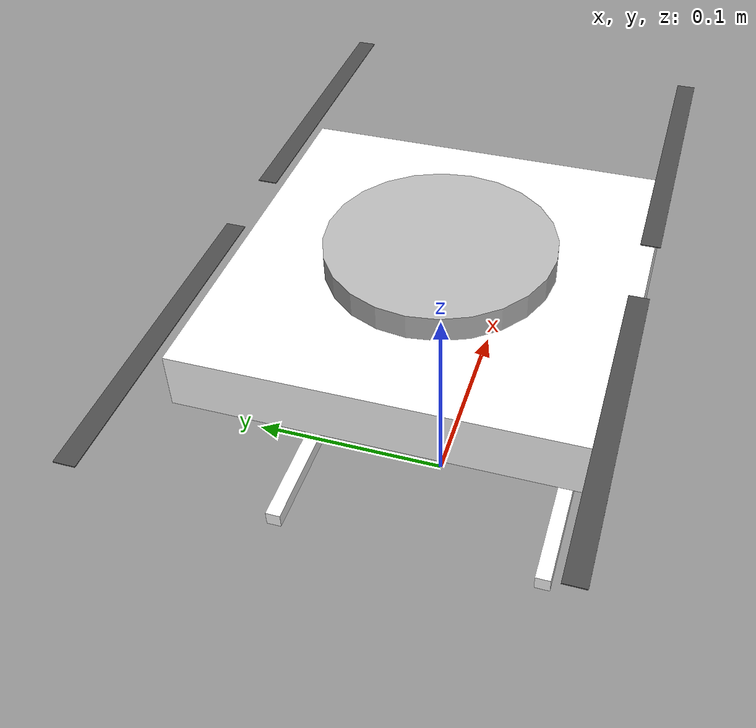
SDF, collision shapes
<?xml version="1.0" encoding="UTF-8"?>
<sdf version='1.9'>
  <model name='x500'>
    <include merge='true'>
      <uri>model://x500_base</uri>
    </include>
    <plugin filename="gz-sim-multicopter-motor-model-system" name="gz::sim::systems::MulticopterMotorModel">
      <jointName>rotor_0_joint</jointName>
      <linkName>rotor_0</linkName>
      <turningDirection>ccw</turningDirection>
      <timeConstantUp>0.0125</timeConstantUp>
      <timeConstantDown>0.025</timeConstantDown>
      <maxRotVelocity>1000.0</maxRotVelocity>
      <motorConstant>8.54858e-06</motorConstant>
      <momentConstant>0.016</momentConstant>
      <commandSubTopic>command/motor_speed</commandSubTopic>
      <motorNumber>0</motorNumber>
      <rotorDragCoefficient>8.06428e-05</rotorDragCoefficient>
      <rollingMomentCoefficient>1e-06</rollingMomentCoefficient>
      <rotorVelocitySlowdownSim>10</rotorVelocitySlowdownSim>
      <motorType>velocity</motorType>
    </plugin>
    <plugin filename="gz-sim-multicopter-motor-model-system" name="gz::sim::systems::MulticopterMotorModel">
      <jointName>rotor_1_joint</jointName>
      <linkName>rotor_1</linkName>
      <turningDirection>ccw</turningDirection>
      <timeConstantUp>0.0125</timeConstantUp>
      <timeConstantDown>0.025</timeConstantDown>
      <maxRotVelocity>1000.0</maxRotVelocity>
      <motorConstant>8.54858e-06</motorConstant>
      <momentConstant>0.016</momentConstant>
      <commandSubTopic>command/motor_speed</commandSubTopic>
      <motorNumber>1</motorNumber>
      <rotorDragCoefficient>8.06428e-05</rotorDragCoefficient>
      <rollingMomentCoefficient>1e-06</rollingMomentCoefficient>
      <rotorVelocitySlowdownSim>10</rotorVelocitySlowdownSim>
      <motorType>velocity</motorType>
    </plugin>
    <plugin filename="gz-sim-multicopter-motor-model-system" name="gz::sim::systems::MulticopterMotorModel">
      <jointName>rotor_2_joint</jointName>
      <linkName>rotor_2</linkName>
      <turningDirection>cw</turningDirection>
      <timeConstantUp>0.0125</timeConstantUp>
      <timeConstantDown>0.025</timeConstantDown>
      <maxRotVelocity>1000.0</maxRotVelocity>
      <motorConstant>8.54858e-06</motorConstant>
      <momentConstant>0.016</momentConstant>
      <commandSubTopic>command/motor_speed</commandSubTopic>
      <motorNumber>2</motorNumber>
      <rotorDragCoefficient>8.06428e-05</rotorDragCoefficient>
      <rollingMomentCoefficient>1e-06</rollingMomentCoefficient>
      <rotorVelocitySlowdownSim>10</rotorVelocitySlowdownSim>
      <motorType>velocity</motorType>
    </plugin>
    <plugin filename="gz-sim-multicopter-motor-model-system" name="gz::sim::systems::MulticopterMotorModel">
      <jointName>rotor_3_joint</jointName>
      <linkName>rotor_3</linkName>
      <turningDirection>cw</turningDirection>
      <timeConstantUp>0.0125</timeConstantUp>
      <timeConstantDown>0.025</timeConstantDown>
      <maxRotVelocity>1000.0</maxRotVelocity>
      <motorConstant>8.54858e-06</motorConstant>
      <momentConstant>0.016</momentConstant>
      <commandSubTopic>command/motor_speed</commandSubTopic>
      <motorNumber>3</motorNumber>
      <rotorDragCoefficient>8.06428e-05</rotorDragCoefficient>
      <rollingMomentCoefficient>1e-06</rollingMomentCoefficient>
      <rotorVelocitySlowdownSim>10</rotorVelocitySlowdownSim>
      <motorType>velocity</motorType>
    </plugin>

    <joint name="lidar_joint" type="fixed">
      <parent>base_link</parent>
      <child>lidar_link</child>
      <pose relative_to="base_link">0.0 0.0 0.12 0 0 0</pose>
    </joint>

    <link name='lidar_link'>
      <pose relative_to="lidar_joint"/>
      <inertial>
        <mass>0.001</mass>
        <inertia>
          <ixx>1e-6</ixx>
          <ixy>0.0</ixy>
          <ixz>0.0</ixz>
          <iyy>1e-6</iyy>
          <iyz>0.0</iyz>
          <izz>1e-6</izz>
        </inertia>
      </inertial>
      <gravity>false</gravity>
      <self_collide>false</self_collide>

      <visual name="lidar_link_visual">
        <geometry>
          <cylinder>
            <radius>0.0508</radius>
            <length>0.055</length>
          </cylinder>
        </geometry>
      </visual>

      <collision name="lidar_link_collision">
        <geometry>
          <cylinder>
            <radius>0.0508</radius>
            <length>0.055</length>
          </cylinder>
        </geometry>
      </collision>

      <sensor name="lidar_gpu_sensor" type="gpu_lidar">
        <always_on>true</always_on>
        <visualize>true</visualize>
        <update_rate>10</update_rate>
        <topic>scan</topic>
        <gz_frame_id>lidar_link</gz_frame_id>
        <lidar>
          <scan>
            <horizontal>
              <samples>100</samples>
              <resolution>1.000000</resolution>
              <min_angle>0.000000</min_angle>
              <max_angle>6.280000</max_angle>
            </horizontal>
          </scan>
          <range>
            <min>0.120000</min>
            <max>10</max>
            <resolution>0.015000</resolution>
          </range>
          <noise>
            <type>gaussian</type>
            <mean>0.0</mean>
            <stddev>0.01</stddev>
          </noise>
        </lidar>
      </sensor>
    </link>

  </model>
</sdf>

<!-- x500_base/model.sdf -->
<sdf version='1.9'>
  <model name='x500_base'>
    <pose>0 0 0.12 0 0 0</pose>
    <self_collide>false</self_collide>
    <static>false</static>
    <link name="base_link">
      <inertial>
        <mass>1.0</mass>
        <inertia>
          <ixx>0.005416666666666667</ixx>
          <ixy>0</ixy>
          <ixz>0</ixz>
          <iyy>0.005416666666666667</iyy>
          <iyz>0</iyz>
          <izz>0.010000000000000002</izz>
        </inertia>
      </inertial>
      <gravity>true</gravity>
      <velocity_decay/>
      <visual name="base_link_visual">
        <pose>0 0 0.0125 0 0 3.141592654</pose>
        <geometry>
          <mesh>
            <scale>0.5 0.5 0.5</scale>
            <uri>model://x500_base/meshes/NXP-HGD-CF.dae</uri>
          </mesh>
        </geometry>
      </visual>
      <visual name="5010_motor_base_0">
        <pose>0.087 0.087 0.016 0 0 -0.45</pose>
        <geometry>
          <mesh>
            <scale>0.5 0.5 0.5</scale>
            <uri>model://x500_base/meshes/5010Base.dae</uri>
          </mesh>
        </geometry>
      </visual>
      <visual name="5010_motor_base_1">
        <pose>-0.087 0.087 0.016 0 0 -0.45</pose>
        <geometry>
          <mesh>
            <scale>0.5 0.5 0.5</scale>
            <uri>model://x500_base/meshes/5010Base.dae</uri>
          </mesh>
        </geometry>
      </visual>
      <visual name="5010_motor_base_2">
        <pose>0.087 -0.087 0.016 0 0 -0.45</pose>
        <geometry>
          <mesh>
            <scale>0.5 0.5 0.5</scale>
            <uri>model://x500_base/meshes/5010Base.dae</uri>
          </mesh>
        </geometry>
      </visual>
      <visual name="5010_motor_base_3">
        <pose>-0.087 -0.087 0.016 0 0 -0.45</pose>
        <geometry>
          <mesh>
            <scale>0.5 0.5 0.5</scale>
            <uri>model://x500_base/meshes/5010Base.dae</uri>
          </mesh>
        </geometry>
      </visual>
      <visual name="NXP_FMUK66_FRONT">
        <pose>0.0235 0.0005 0.0215 1 0 1.57</pose>
        <cast_shadows>false</cast_shadows>
        <geometry>
          <plane>
            <normal>0 0 1</normal>
            <size>0.0065 0.0035</size>
          </plane>
        </geometry>
        <material>
          <diffuse>1.0 1.0 1.0</diffuse>
          <specular>1.0 1.0 1.0</specular>
          <pbr>
            <metal>
              <albedo_map>model://x500_base/materials/textures/nxp.png</albedo_map>
            </metal>
          </pbr>
        </material>
      </visual>
      <visual name="NXP_FMUK66_TOP">
        <pose>-0.0115 0 0.02575 0 0 -1.57</pose>
        <cast_shadows>false</cast_shadows>
        <geometry>
          <plane>
            <normal>0 0 1</normal>
            <size>0.0065 0.0035</size>
          </plane>
        </geometry>
        <material>
          <diffuse>1.0 1.0 1.0</diffuse>
          <specular>1.0 1.0 1.0</specular>
          <pbr>
            <metal>
              <albedo_map>model://x500_base/materials/textures/nxp.png</albedo_map>
            </metal>
          </pbr>
        </material>
      </visual>
      <visual name="RDDRONE_FMUK66_TOP">
        <pose>-0.015 0 0.02575 0 0 -1.57</pose>
        <cast_shadows>false</cast_shadows>
        <geometry>
          <plane>
            <normal>0 0 1</normal>
            <size>0.016 0.0017</size>
          </plane>
        </geometry>
        <material>
          <diffuse>1.0 1.0 1.0</diffuse>
          <specular>1.0 1.0 1.0</specular>
          <pbr>
            <metal>
              <albedo_map>model://x500_base/materials/textures/rd.png</albedo_map>
            </metal>
          </pbr>
        </material>
      </visual>
      <collision name="base_link_collision_0">
        <pose>0 0 0.0035 0 0 0</pose>
        <geometry>
          <box>
            <size>0.17677669529663686 0.17677669529663686 0.025</size>
          </box>
        </geometry>
        <surface>
          <contact>
            <ode>
              <min_depth>0.001</min_depth>
              <max_vel>0</max_vel>
            </ode>
          </contact>
          <friction>
            <ode/>
          </friction>
        </surface>
      </collision>
      <collision name="base_link_collision_1">
        <pose>0 -0.049 -0.0615 -0.35 0 0</pose>
        <geometry>
          <box>
            <size>0.0075 0.0075 0.105</size>
          </box>
        </geometry>
        <surface>
          <contact>
            <ode>
              <min_depth>0.001</min_depth>
              <max_vel>0</max_vel>
            </ode>
          </contact>
          <friction>
            <ode/>
          </friction>
        </surface>
      </collision>
      <collision name="base_link_collision_2">
        <pose>0 0.049 -0.0615 0.35 0 0</pose>
        <geometry>
          <box>
            <size>0.0075 0.0075 0.105</size>
          </box>
        </geometry>
        <surface>
          <contact>
            <ode>
              <min_depth>0.001</min_depth>
              <max_vel>0</max_vel>
            </ode>
          </contact>
          <friction>
            <ode/>
          </friction>
        </surface>
      </collision>
      <collision name="base_link_collision_3">
        <pose>0 -0.066 -0.10975 0 0 0</pose>
        <geometry>
          <box>
            <size>0.125 0.0075 0.0075</size>
          </box>
        </geometry>
        <surface>
          <contact>
            <ode>
              <min_depth>0.001</min_depth>
              <max_vel>0</max_vel>
            </ode>
          </contact>
          <friction>
            <ode/>
          </friction>
        </surface>
      </collision>
      <collision name="base_link_collision_4">
        <pose>0 0.066 -0.10975 0 0 0</pose>
        <geometry>
          <box>
            <size>0.125 0.0075 0.0075</size>
          </box>
        </geometry>
        <surface>
          <contact>
            <ode>
              <min_depth>0.001</min_depth>
              <max_vel>0</max_vel>
            </ode>
          </contact>
          <friction>
            <ode/>
          </friction>
        </surface>
      </collision>
      <sensor name="air_pressure_sensor" type="air_pressure">
        <always_on>1</always_on>
        <update_rate>50</update_rate>
        <air_pressure>
          <pressure>
            <noise type="gaussian">
              <mean>0</mean>
              <stddev>0.01</stddev>
            </noise>
          </pressure>
        </air_pressure>
      </sensor>
      <sensor name="imu_sensor" type="imu">
        <always_on>1</always_on>
        <update_rate>250</update_rate>
        <imu>
          <angular_velocity>
            <x>
              <noise type="gaussian">
                <mean>0</mean>
                <stddev>0.00018665</stddev>
                <dynamic_bias_stddev>3.8785e-05</dynamic_bias_stddev>
                <dynamic_bias_correlation_time>1000</dynamic_bias_correlation_time>
              </noise>
            </x>
            <y>
              <noise type="gaussian">
                <mean>0</mean>
                <stddev>0.00018665</stddev>
                <dynamic_bias_stddev>3.8785e-05</dynamic_bias_stddev>
                <dynamic_bias_correlation_time>1000</dynamic_bias_correlation_time>
              </noise>
            </y>
            <z>
              <noise type="gaussian">
                <mean>0</mean>
                <stddev>0.00018665</stddev>
                <dynamic_bias_stddev>3.8785e-05</dynamic_bias_stddev>
                <dynamic_bias_correlation_time>1000</dynamic_bias_correlation_time>
              </noise>
            </z>
          </angular_velocity>
          <linear_acceleration>
            <x>
              <noise type="gaussian">
                <mean>0</mean>
                <stddev>0.00186</stddev>
                <dynamic_bias_stddev>0.006</dynamic_bias_stddev>
                <dynamic_bias_correlation_time>300</dynamic_bias_correlation_time>
              </noise>
            </x>
            <y>
              <noise type="gaussian">
                <mean>0</mean>
                <stddev>0.00186</stddev>
                <dynamic_bias_stddev>0.006</dynamic_bias_stddev>
                <dynamic_bias_correlation_time>300</dynamic_bias_correlation_time>
              </noise>
            </y>
            <z>
              <noise type="gaussian">
                <mean>0</mean>
                <stddev>0.00186</stddev>
                <dynamic_bias_stddev>0.006</dynamic_bias_stddev>
                <dynamic_bias_correlation_time>300</dynamic_bias_correlation_time>
              </noise>
            </z>
          </linear_acceleration>
        </imu>
      </sensor>
      <sensor name="navsat_sensor" type="navsat">
        <always_on>1</always_on>
        <update_rate>30</update_rate>
      </sensor>
    </link>
    <link name="rotor_0">
      <gravity>true</gravity>
      <self_collide>false</self_collide>
      <velocity_decay/>
      <pose>0.087 -0.087 0.03 0 0 0</pose>
      <inertial>
          <mass>0.008038461538461538</mass>
          <inertia>
            <ixx>9.616227620998331e-08</ixx>
            <iyy>6.528962922925001e-06</iyy>
            <izz>6.62464558678501e-06</izz>
          </inertia>
        </inertial>
      <visual name="rotor_0_visual">
        <pose>-0.011 -0.07319230769230769 -0.008 0 0 0</pose>
        <geometry>
          <mesh>
            <scale>0.4230769230769231 0.4230769230769231 0.4230769230769231</scale>
            <uri>model://x500_base/meshes/1345_prop_ccw.stl</uri>
          </mesh>
        </geometry>
        <material>
          <script>
            <name>Gazebo/DarkGrey</name>
            <uri>file://media/materials/scripts/gazebo.material</uri>
          </script>
        </material>
      </visual>
      <visual name="rotor_0_visual_motor_bell">
        <pose>0 0 -0.016 0 0 0</pose>
        <geometry>
          <mesh>
            <scale>0.5 0.5 0.5</scale>
            <uri>model://x500_base/meshes/5010Bell.dae</uri>
          </mesh>
        </geometry>
      </visual>
      <collision name="rotor_0_collision">
        <pose>0 0 0 0 0 0 </pose>
        <geometry>
          <box>
            <size>0.1396153846153846 0.008461538461538461 0.0004230769230769231</size>
          </box>
        </geometry>
        <surface>
          <contact>
            <ode>
              <min_depth>0.001</min_depth>
              <max_vel>0</max_vel>
            </ode>
          </contact>
          <friction>
            <ode/>
          </friction>
        </surface>
      </collision>
    </link>
    <joint name="rotor_0_joint" type="revolute">
      <parent>base_link</parent>
      <child>rotor_0</child>
      <axis>
        <xyz>0 0 1</xyz>
        <limit>
          <lower>-1e+16</lower>
          <upper>1e+16</upper>
        </limit>
        <dynamics>
          <spring_reference>0</spring_reference>
          <spring_stiffness>0</spring_stiffness>
        </dynamics>
      </axis>
    </joint>
    <link name="rotor_1">
      <gravity>true</gravity>
      <self_collide>false</self_collide>
      <velocity_decay/>
      <pose>-0.087 0.087 0.03 0 0 0</pose>
      <inertial>
          <mass>0.008038461538461538</mass>
          <inertia>
            <ixx>9.616227620998331e-08</ixx>
            <iyy>6.528962922925001e-06</iyy>
            <izz>6.62464558678501e-06</izz>
          </inertia>
        </inertial>
      <visual name="rotor_1_visual">
        <pose>-0.011 -0.07319230769230769 -0.008 0 0 0</pose>
        <geometry>
          <mesh>
            <scale>0.4230769230769231 0.4230769230769231 0.4230769230769231</scale>
            <uri>model://x500_base/meshes/1345_prop_ccw.stl</uri>
          </mesh>
        </geometry>
        <material>
          <script>
            <name>Gazebo/DarkGrey</name>
            <uri>file://media/materials/scripts/gazebo.material</uri>
          </script>
        </material>
      </visual>
      <visual name="rotor_1_visual_motor_top">
        <pose>0 0 -0.016 0 0 0</pose>
        <geometry>
          <mesh>
            <scale>0.5 0.5 0.5</scale>
            <uri>model://x500_base/meshes/5010Bell.dae</uri>
          </mesh>
        </geometry>
      </visual>
      <collision name="rotor_1_collision">
        <pose>0 0 0 0 0 0 </pose>
        <geometry>
          <box>
            <size>0.1396153846153846 0.008461538461538461 0.0004230769230769231</size>
          </box>
        </geometry>
        <surface>
          <contact>
            <ode>
              <min_depth>0.001</min_depth>
              <max_vel>0</max_vel>
            </ode>
          </contact>
          <friction>
            <ode/>
          </friction>
        </surface>
      </collision>
    </link>
    <joint name="rotor_1_joint" type="revolute">
      <parent>base_link</parent>
      <child>rotor_1</child>
      <axis>
        <xyz>0 0 1</xyz>
        <limit>
          <lower>-1e+16</lower>
          <upper>1e+16</upper>
        </limit>
        <dynamics>
          <spring_reference>0</spring_reference>
          <spring_stiffness>0</spring_stiffness>
        </dynamics>
      </axis>
    </joint>
    <link name="rotor_2">
      <gravity>true</gravity>
      <self_collide>false</self_collide>
      <velocity_decay/>
      <pose>0.087 0.087 0.03 0 0 0</pose>
      <inertial>
          <mass>0.008038461538461538</mass>
          <inertia>
            <ixx>9.616227620998331e-08</ixx>
            <iyy>6.528962922925001e-06</iyy>
            <izz>6.62464558678501e-06</izz>
          </inertia>
        </inertial>
      <visual name="rotor_2_visual">
        <pose>-0.011 -0.07319230769230769 -0.008 0 0 0</pose>
        <geometry>
          <mesh>
            <scale>0.4230769230769231 0.4230769230769231 0.4230769230769231</scale>
            <uri>model://x500_base/meshes/1345_prop_cw.stl</uri>
          </mesh>
        </geometry>
        <material>
          <script>
            <name>Gazebo/DarkGrey</name>
            <uri>file://media/materials/scripts/gazebo.material</uri>
          </script>
        </material>
      </visual>
      <visual name="rotor_2_visual_motor_top">
        <pose>0 0 -0.016 0 0 0</pose>
        <geometry>
          <mesh>
            <scale>0.5 0.5 0.5</scale>
            <uri>model://x500_base/meshes/5010Bell.dae</uri>
          </mesh>
        </geometry>
      </visual>
      <collision name="rotor_2_collision">
        <pose>0 0 0 0 0 0 </pose>
        <geometry>
          <box>
            <size>0.1396153846153846 0.008461538461538461 0.0004230769230769231</size>
          </box>
        </geometry>
        <surface>
          <contact>
            <ode>
              <min_depth>0.001</min_depth>
              <max_vel>0</max_vel>
            </ode>
          </contact>
          <friction>
            <ode/>
          </friction>
        </surface>
      </collision>
    </link>
    <joint name="rotor_2_joint" type="revolute">
      <parent>base_link</parent>
      <child>rotor_2</child>
      <axis>
        <xyz>0 0 1</xyz>
        <limit>
          <lower>-1e+16</lower>
          <upper>1e+16</upper>
        </limit>
        <dynamics>
          <spring_reference>0</spring_reference>
          <spring_stiffness>0</spring_stiffness>
        </dynamics>
      </axis>
    </joint>
    <link name="rotor_3">
      <gravity>true</gravity>
      <self_collide>false</self_collide>
      <velocity_decay/>
      <pose>-0.087 -0.087 0.03 0 0 0</pose>
      <inertial>
          <mass>0.008038461538461538</mass>
          <inertia>
            <ixx>9.616227620998331e-08</ixx>
            <iyy>6.528962922925001e-06</iyy>
            <izz>6.62464558678501e-06</izz>
          </inertia>
        </inertial>
      <visual name="rotor_3_visual">
        <pose>-0.011 -0.07319230769230769 -0.008 0 0 0</pose>
        <geometry>
          <mesh>
            <scale>0.4230769230769231 0.4230769230769231 0.4230769230769231</scale>
            <uri>model://x500_base/meshes/1345_prop_cw.stl</uri>
          </mesh>
        </geometry>
        <material>
          <script>
            <name>Gazebo/DarkGrey</name>
            <uri>file://media/materials/scripts/gazebo.material</uri>
          </script>
        </material>
      </visual>
      <visual name="rotor_3_visual_motor_top">
        <pose>0 0 -0.016 0 0 0</pose>
        <geometry>
          <mesh>
            <scale>0.5 0.5 0.5</scale>
            <uri>model://x500_base/meshes/5010Bell.dae</uri>
          </mesh>
        </geometry>
      </visual>
      <collision name="rotor_3_collision">
        <pose>0 0 0 0 0 0 </pose>
        <geometry>
          <box>
            <size>0.1396153846153846 0.008461538461538461 0.0004230769230769231</size>
          </box>
        </geometry>
        <surface>
          <contact>
            <ode>
              <min_depth>0.001</min_depth>
              <max_vel>0</max_vel>
            </ode>
          </contact>
          <friction>
            <ode/>
          </friction>
        </surface>
      </collision>
    </link>
    <joint name="rotor_3_joint" type="revolute">
      <parent>base_link</parent>
      <child>rotor_3</child>
      <axis>
        <xyz>0 0 1</xyz>
        <limit>
          <lower>-1e+16</lower>
          <upper>1e+16</upper>
        </limit>
        <dynamics>
          <spring_reference>0</spring_reference>
          <spring_stiffness>0</spring_stiffness>
        </dynamics>
      </axis>
    </joint>
  </model>
</sdf>
